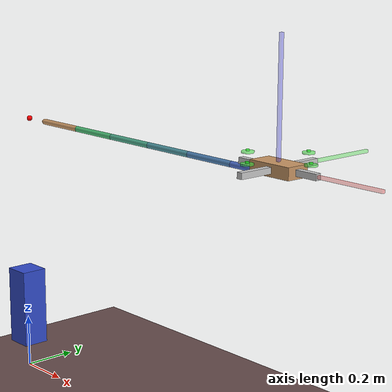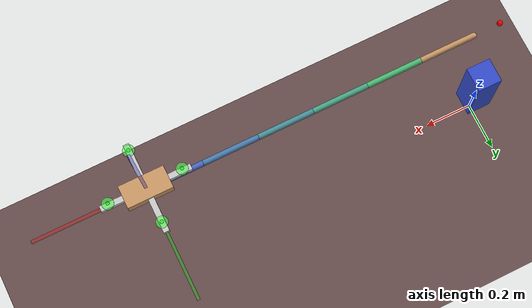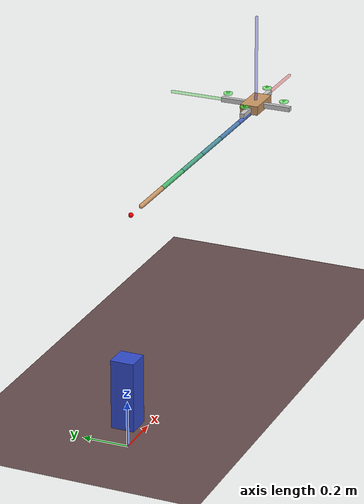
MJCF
<mujoco model="cantilever_3d_drone">
    <compiler angle="degree" inertiafromgeom="true" coordinate="local"/>
    <option timestep="0.01" gravity="0 0 -9.81" density="1" viscosity="1e-5" integrator="RK4"/>

    <default>
        <!-- Un poco de amortiguamiento para estabilidad -->
        <joint damping="0.001" limited="false"/>
        <geom conaffinity="0" condim="3" density="500" friction="1 0.5 0.5" margin="0.01" rgba="0.8 0.6 0.4 1"/>
    </default>

    <asset>
        <texture builtin="gradient" type="skybox" height="100" width="100" rgb1="1 1 1" rgb2="0.6 0.8 1"/>
        <texture name="texplane" builtin="checker" height="100" width="100" rgb1="0.7 0.7 0.7" rgb2="0.9 0.9 0.9" type="2d"/>
        <material name="MatPlane" reflectance="0.3" shininess="1" specular="0.5" texrepeat="5 5" texture="texplane"/>
        <material name="MatBeam" specular="0.3" shininess="0.5" rgba="0.3 0.7 0.3 1"/>
        <material name="MatDrone" specular="0.5" shininess="1" rgba="0.8 0.2 0.2 1"/>
    </asset>

    <worldbody>
        <light cutoff="100" diffuse="1 1 1" dir="-0 0 -1.3" directional="true" exponent="1" pos="0 0 1.3" specular=".1 .1 .1"/>
        <geom conaffinity="1" condim="3" material="MatPlane" name="floor" pos="0 0 0" rgba="0.4 0.3 0.3 1" size="5 5 0.2" type="plane"/>
        <geom name="wall" type="box" size="0.05 0.05 0.15" pos="0 0 0.25" rgba="0.2 0.3 0.8 1"/>

        <!-- ⚙️ Base fija de la viga -->
        <body name="beam_base" pos="0.05 0 1.0">
            <!-- Sitio de referencia del soporte -->
            <site name="base_site" pos="0 0 0" size="0.01" rgba="1 0 0 1"/>
            <!-- 🔗 Barra flexible 3D con 6 segmentos -->
            <body name="seg1" pos="0.1 0 0">
                <joint name="ball1" type="ball" damping="0.002"/>
                <geom type="capsule" fromto="0 0 0 0.200 0 0" size="0.01" material="MatBeam" mass="0.017"/>
                <body name="seg2" pos="0.200 0 0">
                    <joint name="ball2" type="ball" damping="0.002"/>
                    <geom type="capsule" fromto="0 0 0 0.200 0 0" size="0.01" rgba="0.3 0.74 0.46 1" mass="0.017"/>
                <body name="seg3" pos="0.200 0 0">
                    <joint name="ball3" type="ball" damping="0.002"/>
                    <geom type="capsule" fromto="0 0 0 0.200 0 0" size="0.01" rgba="0.3 0.66 0.54 1" mass="0.017"/>
                <body name="seg4" pos="0.200 0 0">
                    <joint name="ball4" type="ball" damping="0.002"/>
                    <geom type="capsule" fromto="0 0 0 0.200 0 0" size="0.01" rgba="0.3 0.58 0.62 1" mass="0.017"/>
                <body name="seg5" pos="0.200 0 0">
                    <joint name="ball5" type="ball" damping="0.002"/>
                    <geom type="capsule" fromto="0 0 0 0.200 0 0" size="0.01" rgba="0.3 0.50 0.70 1" mass="0.017"/>
                <body name="seg6" pos="0.200 0 0">
                    <joint name="ball6" type="ball" damping="0.002"/>
                    <geom type="capsule" fromto="0 0 0 0.200 0 0" size="0.01" rgba="0.3 0.42 0.78 1" mass="0.017"/>
                    <!-- Punto de conexión (extremo libre) -->
                    <site name="end_site" pos="0.200 0 0" size="0.01" rgba="1 1 0 1"/>
                    <!-- Dron cerca del extremo, se une con connect(ball) -->
                    <body name="drone_mount" pos="0.200 0 0.02">

                        <!-- 🚁 Dron 3D (cuerpo libre) -->
                        <body name="drone_3d" pos="0 0 0">
                            <!-- Joint libre (6DOF): permite que el dron exista físicamente en 3D -->
                            <joint name="drone_free" type="free"/>

                            <!-- Cuerpo principal -->
                            <geom name="drone_body" type="box" size="0.08 0.04 0.02" material="MatDrone" mass="0.15"/>

                            <!-- Brazos (solo visual/simple) -->
                            <geom name="arm_x_pos" type="box" pos=" 0.10 0 0" size="0.06 0.01 0.01" rgba="0.8 0.8 0.8 1"/>
                            <geom name="arm_x_neg" type="box" pos="-0.10 0 0" size="0.06 0.01 0.01" rgba="0.8 0.8 0.8 1"/>
                            <geom name="arm_y_pos" type="box" pos="0  0.10 0" size="0.01 0.06 0.01" rgba="0.8 0.8 0.8 1"/>
                            <geom name="arm_y_neg" type="box" pos="0 -0.10 0" size="0.01 0.06 0.01" rgba="0.8 0.8 0.8 1"/>

                            <!-- Hélices / motores (sites para actuadores) -->
                            <body name="prop_0" pos=" 0.13  0.00 0.03">
                                <geom type="cylinder" size="0.02 0.003" rgba="0.3 1 0.3 0.6"/>
                                <site name="motor_0" pos="0 0 0.003" size="0.006" rgba="0 1 0 0.7" type="cylinder"/>
                            </body>
                            <body name="prop_1" pos="-0.13  0.00 0.03">
                                <geom type="cylinder" size="0.02 0.003" rgba="0.3 1 0.3 0.6"/>
                                <site name="motor_1" pos="0 0 0.003" size="0.006" rgba="0 1 0 0.7" type="cylinder"/>
                            </body>
                            <body name="prop_2" pos=" 0.00  0.13 0.03">
                                <geom type="cylinder" size="0.02 0.003" rgba="0.3 1 0.3 0.6"/>
                                <site name="motor_2" pos="0 0 0.003" size="0.006" rgba="0 1 0 0.7" type="cylinder"/>
                            </body>
                            <body name="prop_3" pos=" 0.00 -0.13 0.03">
                                <geom type="cylinder" size="0.02 0.003" rgba="0.3 1 0.3 0.6"/>
                                <site name="motor_3" pos="0 0 0.003" size="0.006" rgba="0 1 0 0.7" type="cylinder"/>
                            </body>

                            <!-- Sitio donde se conecta la rótula (ball) con la viga -->
                            <site name="drone_attach" pos="0 0 0" size="0.01" rgba="1 0 1 1"/>

                            <!-- Ejes de referencia -->
                            <site name="x_axis" type="box" pos="0.20 0 0" size="0.20 0.005 0.005" rgba="1 0 0 0.3"/>
                            <site name="y_axis" type="box" pos="0 0.20 0" size="0.005 0.20 0.005" rgba="0 1 0 0.3"/>
                            <site name="z_axis" type="box" pos="0 0 0.20" size="0.005 0.005 0.20" rgba="0 0 1 0.3"/>
                        </body>

                    </body>
                </body>
                </body>
                </body>
                </body>
                </body>
            </body>
        </body>
    </worldbody>

    <!-- ⚙️ Actuadores (4 hélices) -->
    <actuator>
        <!-- ctrlrange más amplio para que sea más fácil controlar -->
        <motor site="motor_0" ctrlrange="0 2" gear="0 0 1 0 0 -0.05"/>
        <motor site="motor_1" ctrlrange="0 2" gear="0 0 1 0 0  0.05"/>
        <motor site="motor_2" ctrlrange="0 2" gear="0 0 1 0 0 -0.05"/>
        <motor site="motor_3" ctrlrange="0 2" gear="0 0 1 0 0  0.05"/>
    </actuator>

    <!-- 📡 Sensores -->
    <sensor>
        <framepos    name="pos_drone"    objtype="body" objname="drone_3d"/>
        <framequat   name="quat_drone"   objtype="body" objname="drone_3d"/>
        <framelinvel name="linvel_drone" objtype="body" objname="drone_3d"/>
        <frameangvel name="rotvel_drone" objtype="body" objname="drone_3d"/>
    </sensor>

    <!-- 🧩 Unión esférica (ball) entre último segmento y dron -->
    <equality>
        <!-- Conecta el sitio del último segmento (end_site) con el sitio del dron (drone_attach)
             Esto actúa como una rótula: coinciden en posición, pero el dron puede rotar libremente -->
        <connect name="ball_to_drone" site1="end_site" site2="drone_attach"
                 solimp="0.9 0.95 0.001" solref="0.02 1"/>
    </equality>

</mujoco>
